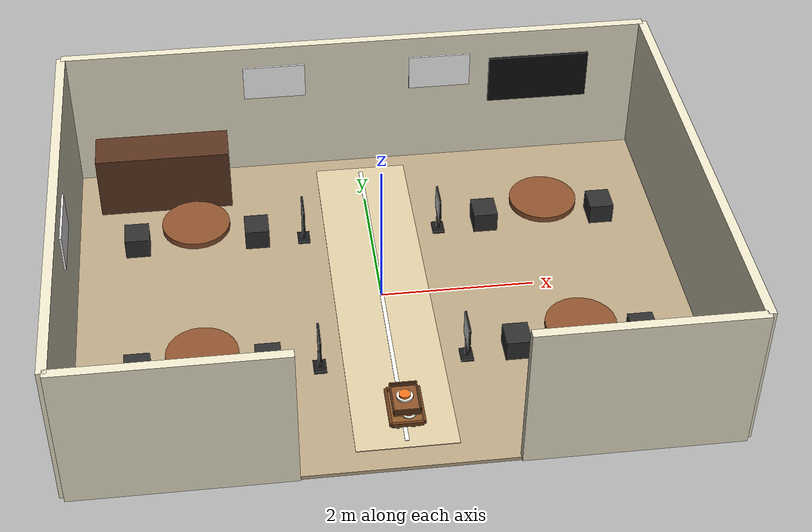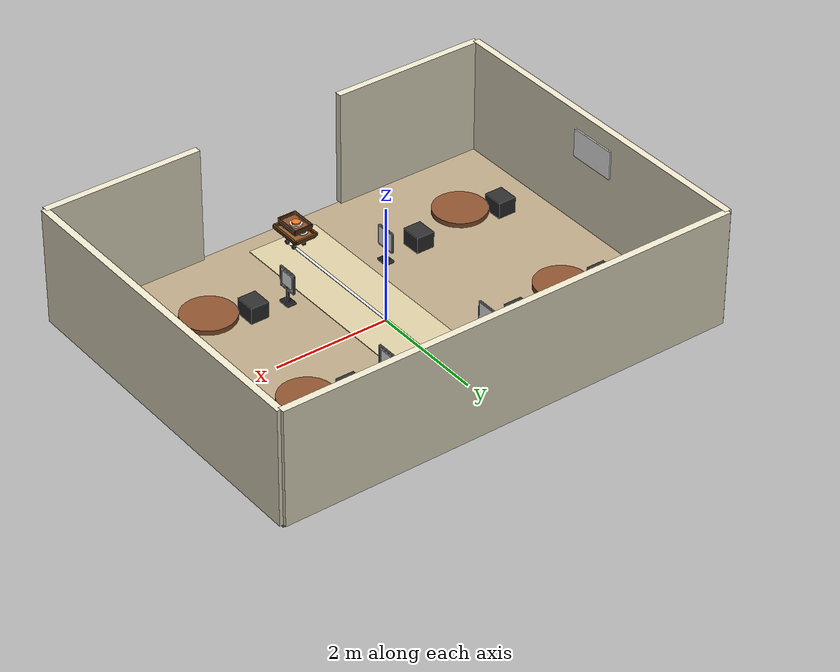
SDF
<?xml version="1.0" ?>
<sdf version="1.10">
  <world name="restaurant_qr_activity_v3">
    <physics name="1ms" type="ignored">
      <max_step_size>0.001</max_step_size>
      <real_time_factor>1.0</real_time_factor>
    </physics>

    <plugin filename="gz-sim-physics-system" name="gz::sim::systems::Physics"/>
    <plugin filename="gz-sim-user-commands-system" name="gz::sim::systems::UserCommands"/>
    <plugin filename="gz-sim-scene-broadcaster-system" name="gz::sim::systems::SceneBroadcaster"/>
    <plugin filename="gz-sim-sensors-system" name="gz::sim::systems::Sensors">
      <render_engine>ogre2</render_engine>
    </plugin>

    <!-- Bright lighting: one sun plus two ceiling point lights. -->
    <light type="directional" name="sun">
      <cast_shadows>true</cast_shadows>
      <pose>0 0 8 0 0 0</pose>
      <diffuse>1.0 1.0 0.95 1</diffuse>
      <specular>0.3 0.3 0.3 1</specular>
      <direction>-0.3 0.2 -1</direction>
    </light>
    <light type="point" name="ceiling_light_front">
      <pose>0 -1.4 2.7 0 0 0</pose>
      <diffuse>1 1 0.92 1</diffuse>
      <specular>0.3 0.3 0.3 1</specular>
      <attenuation>
        <range>8</range>
        <constant>0.4</constant>
        <linear>0.03</linear>
        <quadratic>0.001</quadratic>
      </attenuation>
    </light>
    <light type="point" name="ceiling_light_back">
      <pose>0 1.4 2.7 0 0 0</pose>
      <diffuse>1 1 0.92 1</diffuse>
      <specular>0.3 0.3 0.3 1</specular>
      <attenuation>
        <range>8</range>
        <constant>0.4</constant>
        <linear>0.03</linear>
        <quadratic>0.001</quadratic>
      </attenuation>
    </light>

    <!-- Floor -->
    <model name="restaurant_floor">
      <static>true</static>
      <pose>0 0 -0.025 0 0 0</pose>
      <link name="floor_link">
        <collision name="collision"><geometry><box><size>8 6 0.05</size></box></geometry></collision>
        <visual name="visual">
          <geometry><box><size>8 6 0.05</size></box></geometry>
          <material><ambient>0.73 0.65 0.52 1</ambient><diffuse>0.73 0.65 0.52 1</diffuse></material>
        </visual>
      </link>
    </model>

    <!-- Clear center driving aisle: car should only move forward/backward along the Y direction. -->
    <model name="center_driving_aisle">
      <static>true</static>
      <pose>0 0 0.006 0 0 0</pose>
      <link name="aisle_link">
        <visual name="aisle_visual">
          <geometry><box><size>1.25 5.4 0.01</size></box></geometry>
          <material><ambient>0.86 0.80 0.64 1</ambient><diffuse>0.86 0.80 0.64 1</diffuse></material>
        </visual>
      </link>
    </model>
    <model name="aisle_center_line">
      <static>true</static>
      <pose>0 0 0.015 0 0 0</pose>
      <link name="line_link">
        <visual name="line_visual">
          <geometry><box><size>0.05 5.2 0.01</size></box></geometry>
          <material><ambient>0.98 0.98 0.98 1</ambient><diffuse>0.98 0.98 0.98 1</diffuse></material>
        </visual>
      </link>
    </model>

    <!-- Room walls with a front entrance opening centered on the aisle. -->
    <model name="back_wall"><static>true</static><pose>0 3 1 0 0 0</pose><link name="link"><collision name="c"><geometry><box><size>8 0.12 2</size></box></geometry></collision><visual name="v"><geometry><box><size>8 0.12 2</size></box></geometry><material><ambient>0.93 0.90 0.80 1</ambient><diffuse>0.93 0.90 0.80 1</diffuse></material></visual></link></model>
    <model name="left_wall"><static>true</static><pose>-4 0 1 0 0 0</pose><link name="link"><collision name="c"><geometry><box><size>0.12 6 2</size></box></geometry></collision><visual name="v"><geometry><box><size>0.12 6 2</size></box></geometry><material><ambient>0.93 0.90 0.80 1</ambient><diffuse>0.93 0.90 0.80 1</diffuse></material></visual></link></model>
    <model name="right_wall"><static>true</static><pose>4 0 1 0 0 0</pose><link name="link"><collision name="c"><geometry><box><size>0.12 6 2</size></box></geometry></collision><visual name="v"><geometry><box><size>0.12 6 2</size></box></geometry><material><ambient>0.93 0.90 0.80 1</ambient><diffuse>0.93 0.90 0.80 1</diffuse></material></visual></link></model>
    <model name="front_wall_left"><static>true</static><pose>-2.65 -3 1 0 0 0</pose><link name="link"><collision name="c"><geometry><box><size>2.7 0.12 2</size></box></geometry></collision><visual name="v"><geometry><box><size>2.7 0.12 2</size></box></geometry><material><ambient>0.93 0.90 0.80 1</ambient><diffuse>0.93 0.90 0.80 1</diffuse></material></visual></link></model>
    <model name="front_wall_right"><static>true</static><pose>2.65 -3 1 0 0 0</pose><link name="link"><collision name="c"><geometry><box><size>2.7 0.12 2</size></box></geometry></collision><visual name="v"><geometry><box><size>2.7 0.12 2</size></box></geometry><material><ambient>0.93 0.90 0.80 1</ambient><diffuse>0.93 0.90 0.80 1</diffuse></material></visual></link></model>

    <!-- Counter / host stand away from the center driving aisle. -->
    <model name="service_counter"><static>true</static><pose>-2.75 2.35 0.45 0 0 0</pose><link name="link"><collision name="c"><geometry><box><size>1.8 0.55 0.9</size></box></geometry></collision><visual name="v"><geometry><box><size>1.8 0.55 0.9</size></box></geometry><material><ambient>0.35 0.20 0.12 1</ambient><diffuse>0.35 0.20 0.12 1</diffuse></material></visual></link></model>
    <model name="menu_board"><static>true</static><pose>2.55 2.92 1.25 0 0 0</pose><link name="link"><collision name="c"><geometry><box><size>1.4 0.04 0.7</size></box></geometry></collision><visual name="v"><geometry><box><size>1.4 0.04 0.7</size></box></geometry><material><ambient>0.05 0.05 0.05 1</ambient><diffuse>0.05 0.05 0.05 1</diffuse></material></visual></link></model>

    <!-- Four symmetric tables. They stay outside the center aisle. -->
    <model name="table_left_front"><static>true</static><pose>-2.35 -1.25 0.38 0 0 0</pose><link name="link"><collision name="c"><geometry><cylinder><radius>0.45</radius><length>0.08</length></cylinder></geometry></collision><visual name="v"><geometry><cylinder><radius>0.45</radius><length>0.08</length></cylinder></geometry><material><ambient>0.55 0.32 0.18 1</ambient><diffuse>0.55 0.32 0.18 1</diffuse></material></visual></link></model>
    <model name="table_right_front"><static>true</static><pose>2.35 -1.25 0.38 0 0 0</pose><link name="link"><collision name="c"><geometry><cylinder><radius>0.45</radius><length>0.08</length></cylinder></geometry></collision><visual name="v"><geometry><cylinder><radius>0.45</radius><length>0.08</length></cylinder></geometry><material><ambient>0.55 0.32 0.18 1</ambient><diffuse>0.55 0.32 0.18 1</diffuse></material></visual></link></model>
    <model name="table_left_back"><static>true</static><pose>-2.35 1.25 0.38 0 0 0</pose><link name="link"><collision name="c"><geometry><cylinder><radius>0.45</radius><length>0.08</length></cylinder></geometry></collision><visual name="v"><geometry><cylinder><radius>0.45</radius><length>0.08</length></cylinder></geometry><material><ambient>0.55 0.32 0.18 1</ambient><diffuse>0.55 0.32 0.18 1</diffuse></material></visual></link></model>
    <model name="table_right_back"><static>true</static><pose>2.35 1.25 0.38 0 0 0</pose><link name="link"><collision name="c"><geometry><cylinder><radius>0.45</radius><length>0.08</length></cylinder></geometry></collision><visual name="v"><geometry><cylinder><radius>0.45</radius><length>0.08</length></cylinder></geometry><material><ambient>0.55 0.32 0.18 1</ambient><diffuse>0.55 0.32 0.18 1</diffuse></material></visual></link></model>

    <!-- Small chairs around the tables. No giant invisible collision box. -->
    <model name="chair_set"><static>true</static>
      <link name="chairs">
        <visual name="lf_chair_inner"><pose>-1.55 -1.25 0.18 0 0 0</pose><geometry><box><size>0.32 0.36 0.28</size></box></geometry><material><ambient>0.18 0.18 0.18 1</ambient><diffuse>0.18 0.18 0.18 1</diffuse></material></visual>
        <visual name="lf_chair_outer"><pose>-3.15 -1.25 0.18 0 0 0</pose><geometry><box><size>0.32 0.36 0.28</size></box></geometry><material><ambient>0.18 0.18 0.18 1</ambient><diffuse>0.18 0.18 0.18 1</diffuse></material></visual>
        <visual name="rf_chair_inner"><pose>1.55 -1.25 0.18 0 0 0</pose><geometry><box><size>0.32 0.36 0.28</size></box></geometry><material><ambient>0.18 0.18 0.18 1</ambient><diffuse>0.18 0.18 0.18 1</diffuse></material></visual>
        <visual name="rf_chair_outer"><pose>3.15 -1.25 0.18 0 0 0</pose><geometry><box><size>0.32 0.36 0.28</size></box></geometry><material><ambient>0.18 0.18 0.18 1</ambient><diffuse>0.18 0.18 0.18 1</diffuse></material></visual>
        <visual name="lb_chair_inner"><pose>-1.55 1.25 0.18 0 0 0</pose><geometry><box><size>0.32 0.36 0.28</size></box></geometry><material><ambient>0.18 0.18 0.18 1</ambient><diffuse>0.18 0.18 0.18 1</diffuse></material></visual>
        <visual name="lb_chair_outer"><pose>-3.15 1.25 0.18 0 0 0</pose><geometry><box><size>0.32 0.36 0.28</size></box></geometry><material><ambient>0.18 0.18 0.18 1</ambient><diffuse>0.18 0.18 0.18 1</diffuse></material></visual>
        <visual name="rb_chair_inner"><pose>1.55 1.25 0.18 0 0 0</pose><geometry><box><size>0.32 0.36 0.28</size></box></geometry><material><ambient>0.18 0.18 0.18 1</ambient><diffuse>0.18 0.18 0.18 1</diffuse></material></visual>
        <visual name="rb_chair_outer"><pose>3.15 1.25 0.18 0 0 0</pose><geometry><box><size>0.32 0.36 0.28</size></box></geometry><material><ambient>0.18 0.18 0.18 1</ambient><diffuse>0.18 0.18 0.18 1</diffuse></material></visual>
      </link>
    </model>

    <!-- QR whiteboards near the robot path, beside the four tables. -->
    <include>
      <name>qr_left_front_table</name>
      <uri>model://restaurant_qr_marker_01</uri>
      <pose>-0.92 -1.25 0.00 0 0 -1.5708</pose>
    </include>
    <include>
      <name>qr_right_front_table</name>
      <uri>model://restaurant_qr_marker_02</uri>
      <pose>0.92 -1.25 0.00 0 0 1.5708</pose>
    </include>
    <include>
      <name>qr_left_back_table</name>
      <uri>model://restaurant_qr_marker_03</uri>
      <pose>-0.92 1.25 0.00 0 0 -1.5708</pose>
    </include>
    <include>
      <name>qr_right_back_table</name>
      <uri>model://restaurant_qr_marker_04</uri>
      <pose>0.92 1.25 0.00 0 0 1.5708</pose>
    </include>

    <!-- Restaurant decorations on the walls. Kept higher than the QR boards so they do not confuse the robot camera. -->
    <include>
      <name>wall_art_pizza_back</name>
      <uri>model://restaurant_wall_art_pizza</uri>
      <pose>-1.15 2.925 1.45 0 0 0</pose>
    </include>
    <include>
      <name>wall_art_cafe_back</name>
      <uri>model://restaurant_wall_art_cafe</uri>
      <pose>1.15 2.925 1.45 0 0 0</pose>
    </include>
    <include>
      <name>wall_art_bistro_left</name>
      <uri>model://restaurant_wall_art_bistro</uri>
      <pose>-3.925 0.00 1.45 0 0 -1.5708</pose>
    </include>

    <!-- Food delivery tray placed on top of the robot at the start.
         This visually shows that the robot is a restaurant delivery robot. -->
    <include>
      <name>delivery_tray_on_robot_start</name>
      <uri>model://restaurant_delivery_tray</uri>
      <pose>0 -2.35 0.28 0 0 1.5708</pose>
    </include>

    <!-- Optional robot. The car starts in the center aisle; only forward/backward motion is needed. -->
    <include>
      <name>robot_car</name>
      <uri>model://ackermann_car</uri>
      <pose>0 -2.35 0.08 0 0 1.5708</pose>
    </include>
  </world>
</sdf>

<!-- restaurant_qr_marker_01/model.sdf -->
<sdf version="1.10">
  <model name="restaurant_qr_marker_01">
    <static>true</static>
    <link name="qr_whiteboard_link">
      <!-- Model origin is on the floor. QR board center height is 0.42 m. -->
      <visual name="white_backing">
        <pose>0 0.006 0.42 0 0 0</pose>
        <geometry><box><size>0.32 0.018 0.32</size></box></geometry>
        <material><ambient>1 1 1 1</ambient><diffuse>1 1 1 1</diffuse></material>
      </visual>
      <visual name="qr_panel_visual">
        <pose>0 -0.006 0.42 0 0 0</pose>
        <geometry><box><size>0.24 0.012 0.24</size></box></geometry>
        <material>
          <ambient>1 1 1 1</ambient>
          <diffuse>1 1 1 1</diffuse>
          <pbr><metal><albedo_map>materials/textures/qr_01.png</albedo_map><roughness>0.85</roughness><metalness>0.0</metalness></metal></pbr>
        </material>
      </visual>
      <visual name="black_frame_top"><pose>0 0 0.59 0 0 0</pose><geometry><box><size>0.34 0.025 0.025</size></box></geometry><material><ambient>0.05 0.05 0.05 1</ambient><diffuse>0.05 0.05 0.05 1</diffuse></material></visual>
      <visual name="black_frame_bottom"><pose>0 0 0.25 0 0 0</pose><geometry><box><size>0.34 0.025 0.025</size></box></geometry><material><ambient>0.05 0.05 0.05 1</ambient><diffuse>0.05 0.05 0.05 1</diffuse></material></visual>
      <visual name="black_frame_left"><pose>-0.17 0 0.42 0 0 0</pose><geometry><box><size>0.025 0.025 0.34</size></box></geometry><material><ambient>0.05 0.05 0.05 1</ambient><diffuse>0.05 0.05 0.05 1</diffuse></material></visual>
      <visual name="black_frame_right"><pose>0.17 0 0.42 0 0 0</pose><geometry><box><size>0.025 0.025 0.34</size></box></geometry><material><ambient>0.05 0.05 0.05 1</ambient><diffuse>0.05 0.05 0.05 1</diffuse></material></visual>
      <visual name="stand_pole"><pose>0 0 0.14 0 0 0</pose><geometry><box><size>0.045 0.045 0.28</size></box></geometry><material><ambient>0.12 0.12 0.12 1</ambient><diffuse>0.12 0.12 0.12 1</diffuse></material></visual>
      <visual name="stand_base"><pose>0 0 0.015 0 0 0</pose><geometry><box><size>0.22 0.16 0.03</size></box></geometry><material><ambient>0.1 0.1 0.1 1</ambient><diffuse>0.1 0.1 0.1 1</diffuse></material></visual>
      <collision name="qr_board_collision"><pose>0 0 0.42 0 0 0</pose><geometry><box><size>0.34 0.03 0.34</size></box></geometry></collision>
      <collision name="stand_collision"><pose>0 0 0.14 0 0 0</pose><geometry><box><size>0.05 0.05 0.28</size></box></geometry></collision>
      <collision name="base_collision"><pose>0 0 0.015 0 0 0</pose><geometry><box><size>0.22 0.16 0.03</size></box></geometry></collision>
    </link>
  </model>
</sdf>

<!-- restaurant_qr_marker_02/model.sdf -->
<sdf version="1.10">
  <model name="restaurant_qr_marker_02">
    <static>true</static>
    <link name="qr_whiteboard_link">
      <!-- Model origin is on the floor. QR board center height is 0.42 m. -->
      <visual name="white_backing">
        <pose>0 0.006 0.42 0 0 0</pose>
        <geometry><box><size>0.32 0.018 0.32</size></box></geometry>
        <material><ambient>1 1 1 1</ambient><diffuse>1 1 1 1</diffuse></material>
      </visual>
      <visual name="qr_panel_visual">
        <pose>0 -0.006 0.42 0 0 0</pose>
        <geometry><box><size>0.24 0.012 0.24</size></box></geometry>
        <material>
          <ambient>1 1 1 1</ambient>
          <diffuse>1 1 1 1</diffuse>
          <pbr><metal><albedo_map>materials/textures/qr_02.png</albedo_map><roughness>0.85</roughness><metalness>0.0</metalness></metal></pbr>
        </material>
      </visual>
      <visual name="black_frame_top"><pose>0 0 0.59 0 0 0</pose><geometry><box><size>0.34 0.025 0.025</size></box></geometry><material><ambient>0.05 0.05 0.05 1</ambient><diffuse>0.05 0.05 0.05 1</diffuse></material></visual>
      <visual name="black_frame_bottom"><pose>0 0 0.25 0 0 0</pose><geometry><box><size>0.34 0.025 0.025</size></box></geometry><material><ambient>0.05 0.05 0.05 1</ambient><diffuse>0.05 0.05 0.05 1</diffuse></material></visual>
      <visual name="black_frame_left"><pose>-0.17 0 0.42 0 0 0</pose><geometry><box><size>0.025 0.025 0.34</size></box></geometry><material><ambient>0.05 0.05 0.05 1</ambient><diffuse>0.05 0.05 0.05 1</diffuse></material></visual>
      <visual name="black_frame_right"><pose>0.17 0 0.42 0 0 0</pose><geometry><box><size>0.025 0.025 0.34</size></box></geometry><material><ambient>0.05 0.05 0.05 1</ambient><diffuse>0.05 0.05 0.05 1</diffuse></material></visual>
      <visual name="stand_pole"><pose>0 0 0.14 0 0 0</pose><geometry><box><size>0.045 0.045 0.28</size></box></geometry><material><ambient>0.12 0.12 0.12 1</ambient><diffuse>0.12 0.12 0.12 1</diffuse></material></visual>
      <visual name="stand_base"><pose>0 0 0.015 0 0 0</pose><geometry><box><size>0.22 0.16 0.03</size></box></geometry><material><ambient>0.1 0.1 0.1 1</ambient><diffuse>0.1 0.1 0.1 1</diffuse></material></visual>
      <collision name="qr_board_collision"><pose>0 0 0.42 0 0 0</pose><geometry><box><size>0.34 0.03 0.34</size></box></geometry></collision>
      <collision name="stand_collision"><pose>0 0 0.14 0 0 0</pose><geometry><box><size>0.05 0.05 0.28</size></box></geometry></collision>
      <collision name="base_collision"><pose>0 0 0.015 0 0 0</pose><geometry><box><size>0.22 0.16 0.03</size></box></geometry></collision>
    </link>
  </model>
</sdf>

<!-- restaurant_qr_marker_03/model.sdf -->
<sdf version="1.10">
  <model name="restaurant_qr_marker_03">
    <static>true</static>
    <link name="qr_whiteboard_link">
      <!-- Model origin is on the floor. QR board center height is 0.42 m. -->
      <visual name="white_backing">
        <pose>0 0.006 0.42 0 0 0</pose>
        <geometry><box><size>0.32 0.018 0.32</size></box></geometry>
        <material><ambient>1 1 1 1</ambient><diffuse>1 1 1 1</diffuse></material>
      </visual>
      <visual name="qr_panel_visual">
        <pose>0 -0.006 0.42 0 0 0</pose>
        <geometry><box><size>0.24 0.012 0.24</size></box></geometry>
        <material>
          <ambient>1 1 1 1</ambient>
          <diffuse>1 1 1 1</diffuse>
          <pbr><metal><albedo_map>materials/textures/qr_03.png</albedo_map><roughness>0.85</roughness><metalness>0.0</metalness></metal></pbr>
        </material>
      </visual>
      <visual name="black_frame_top"><pose>0 0 0.59 0 0 0</pose><geometry><box><size>0.34 0.025 0.025</size></box></geometry><material><ambient>0.05 0.05 0.05 1</ambient><diffuse>0.05 0.05 0.05 1</diffuse></material></visual>
      <visual name="black_frame_bottom"><pose>0 0 0.25 0 0 0</pose><geometry><box><size>0.34 0.025 0.025</size></box></geometry><material><ambient>0.05 0.05 0.05 1</ambient><diffuse>0.05 0.05 0.05 1</diffuse></material></visual>
      <visual name="black_frame_left"><pose>-0.17 0 0.42 0 0 0</pose><geometry><box><size>0.025 0.025 0.34</size></box></geometry><material><ambient>0.05 0.05 0.05 1</ambient><diffuse>0.05 0.05 0.05 1</diffuse></material></visual>
      <visual name="black_frame_right"><pose>0.17 0 0.42 0 0 0</pose><geometry><box><size>0.025 0.025 0.34</size></box></geometry><material><ambient>0.05 0.05 0.05 1</ambient><diffuse>0.05 0.05 0.05 1</diffuse></material></visual>
      <visual name="stand_pole"><pose>0 0 0.14 0 0 0</pose><geometry><box><size>0.045 0.045 0.28</size></box></geometry><material><ambient>0.12 0.12 0.12 1</ambient><diffuse>0.12 0.12 0.12 1</diffuse></material></visual>
      <visual name="stand_base"><pose>0 0 0.015 0 0 0</pose><geometry><box><size>0.22 0.16 0.03</size></box></geometry><material><ambient>0.1 0.1 0.1 1</ambient><diffuse>0.1 0.1 0.1 1</diffuse></material></visual>
      <collision name="qr_board_collision"><pose>0 0 0.42 0 0 0</pose><geometry><box><size>0.34 0.03 0.34</size></box></geometry></collision>
      <collision name="stand_collision"><pose>0 0 0.14 0 0 0</pose><geometry><box><size>0.05 0.05 0.28</size></box></geometry></collision>
      <collision name="base_collision"><pose>0 0 0.015 0 0 0</pose><geometry><box><size>0.22 0.16 0.03</size></box></geometry></collision>
    </link>
  </model>
</sdf>

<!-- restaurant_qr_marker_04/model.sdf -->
<sdf version="1.10">
  <model name="restaurant_qr_marker_04">
    <static>true</static>
    <link name="qr_whiteboard_link">
      <!-- Model origin is on the floor. QR board center height is 0.42 m. -->
      <visual name="white_backing">
        <pose>0 0.006 0.42 0 0 0</pose>
        <geometry><box><size>0.32 0.018 0.32</size></box></geometry>
        <material><ambient>1 1 1 1</ambient><diffuse>1 1 1 1</diffuse></material>
      </visual>
      <visual name="qr_panel_visual">
        <pose>0 -0.006 0.42 0 0 0</pose>
        <geometry><box><size>0.24 0.012 0.24</size></box></geometry>
        <material>
          <ambient>1 1 1 1</ambient>
          <diffuse>1 1 1 1</diffuse>
          <pbr><metal><albedo_map>materials/textures/qr_04.png</albedo_map><roughness>0.85</roughness><metalness>0.0</metalness></metal></pbr>
        </material>
      </visual>
      <visual name="black_frame_top"><pose>0 0 0.59 0 0 0</pose><geometry><box><size>0.34 0.025 0.025</size></box></geometry><material><ambient>0.05 0.05 0.05 1</ambient><diffuse>0.05 0.05 0.05 1</diffuse></material></visual>
      <visual name="black_frame_bottom"><pose>0 0 0.25 0 0 0</pose><geometry><box><size>0.34 0.025 0.025</size></box></geometry><material><ambient>0.05 0.05 0.05 1</ambient><diffuse>0.05 0.05 0.05 1</diffuse></material></visual>
      <visual name="black_frame_left"><pose>-0.17 0 0.42 0 0 0</pose><geometry><box><size>0.025 0.025 0.34</size></box></geometry><material><ambient>0.05 0.05 0.05 1</ambient><diffuse>0.05 0.05 0.05 1</diffuse></material></visual>
      <visual name="black_frame_right"><pose>0.17 0 0.42 0 0 0</pose><geometry><box><size>0.025 0.025 0.34</size></box></geometry><material><ambient>0.05 0.05 0.05 1</ambient><diffuse>0.05 0.05 0.05 1</diffuse></material></visual>
      <visual name="stand_pole"><pose>0 0 0.14 0 0 0</pose><geometry><box><size>0.045 0.045 0.28</size></box></geometry><material><ambient>0.12 0.12 0.12 1</ambient><diffuse>0.12 0.12 0.12 1</diffuse></material></visual>
      <visual name="stand_base"><pose>0 0 0.015 0 0 0</pose><geometry><box><size>0.22 0.16 0.03</size></box></geometry><material><ambient>0.1 0.1 0.1 1</ambient><diffuse>0.1 0.1 0.1 1</diffuse></material></visual>
      <collision name="qr_board_collision"><pose>0 0 0.42 0 0 0</pose><geometry><box><size>0.34 0.03 0.34</size></box></geometry></collision>
      <collision name="stand_collision"><pose>0 0 0.14 0 0 0</pose><geometry><box><size>0.05 0.05 0.28</size></box></geometry></collision>
      <collision name="base_collision"><pose>0 0 0.015 0 0 0</pose><geometry><box><size>0.22 0.16 0.03</size></box></geometry></collision>
    </link>
  </model>
</sdf>

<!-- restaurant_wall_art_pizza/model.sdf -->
<sdf version="1.10">
  <model name="restaurant_wall_art_pizza">
    <static>true</static>
    <link name="art_link">
      <visual name="art_visual">
        <geometry><box><size>0.85 0.025 0.50</size></box></geometry>
        <material>
          <ambient>1 1 1 1</ambient><diffuse>1 1 1 1</diffuse>
          <pbr><metal><albedo_map>materials/textures/restaurant_wall_art_pizza.png</albedo_map><roughness>0.9</roughness><metalness>0.0</metalness></metal></pbr>
        </material>
      </visual>
      <collision name="art_collision"><geometry><box><size>0.85 0.025 0.50</size></box></geometry></collision>
    </link>
  </model>
</sdf>

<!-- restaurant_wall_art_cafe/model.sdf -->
<sdf version="1.10">
  <model name="restaurant_wall_art_cafe">
    <static>true</static>
    <link name="art_link">
      <visual name="art_visual">
        <geometry><box><size>0.85 0.025 0.50</size></box></geometry>
        <material>
          <ambient>1 1 1 1</ambient><diffuse>1 1 1 1</diffuse>
          <pbr><metal><albedo_map>materials/textures/restaurant_wall_art_cafe.png</albedo_map><roughness>0.9</roughness><metalness>0.0</metalness></metal></pbr>
        </material>
      </visual>
      <collision name="art_collision"><geometry><box><size>0.85 0.025 0.50</size></box></geometry></collision>
    </link>
  </model>
</sdf>

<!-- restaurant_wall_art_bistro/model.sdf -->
<sdf version="1.10">
  <model name="restaurant_wall_art_bistro">
    <static>true</static>
    <link name="art_link">
      <visual name="art_visual">
        <geometry><box><size>0.85 0.025 0.50</size></box></geometry>
        <material>
          <ambient>1 1 1 1</ambient><diffuse>1 1 1 1</diffuse>
          <pbr><metal><albedo_map>materials/textures/restaurant_wall_art_bistro.png</albedo_map><roughness>0.9</roughness><metalness>0.0</metalness></metal></pbr>
        </material>
      </visual>
      <collision name="art_collision"><geometry><box><size>0.85 0.025 0.50</size></box></geometry></collision>
    </link>
  </model>
</sdf>

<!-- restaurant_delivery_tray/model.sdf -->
<sdf version="1.10">
  <model name="restaurant_delivery_tray">
    <static>false</static>
    <link name="tray_link">
      <inertial><mass>0.35</mass><inertia><ixx>0.01</ixx><iyy>0.01</iyy><izz>0.01</izz></inertia></inertial>
      <!-- Tray platform -->
      <visual name="tray_board"><pose>0 0 0.02 0 0 0</pose><geometry><box><size>0.55 0.38 0.04</size></box></geometry><material><ambient>0.55 0.35 0.16 1</ambient><diffuse>0.55 0.35 0.16 1</diffuse></material></visual>
      <collision name="tray_collision"><pose>0 0 0.02 0 0 0</pose><geometry><box><size>0.55 0.38 0.04</size></box></geometry></collision>
      <!-- Raised rim -->
      <visual name="rim_front"><pose>0 -0.20 0.065 0 0 0</pose><geometry><box><size>0.58 0.035 0.05</size></box></geometry><material><ambient>0.42 0.24 0.10 1</ambient><diffuse>0.42 0.24 0.10 1</diffuse></material></visual>
      <visual name="rim_back"><pose>0 0.20 0.065 0 0 0</pose><geometry><box><size>0.58 0.035 0.05</size></box></geometry><material><ambient>0.42 0.24 0.10 1</ambient><diffuse>0.42 0.24 0.10 1</diffuse></material></visual>
      <visual name="rim_left"><pose>-0.29 0 0.065 0 0 0</pose><geometry><box><size>0.035 0.38 0.05</size></box></geometry><material><ambient>0.42 0.24 0.10 1</ambient><diffuse>0.42 0.24 0.10 1</diffuse></material></visual>
      <visual name="rim_right"><pose>0.29 0 0.065 0 0 0</pose><geometry><box><size>0.035 0.38 0.05</size></box></geometry><material><ambient>0.42 0.24 0.10 1</ambient><diffuse>0.42 0.24 0.10 1</diffuse></material></visual>
      <!-- Food plates to show delivery function -->
      <visual name="plate_1"><pose>-0.14 -0.03 0.09 0 0 0</pose><geometry><cylinder><radius>0.09</radius><length>0.015</length></cylinder></geometry><material><ambient>0.95 0.95 0.90 1</ambient><diffuse>0.95 0.95 0.90 1</diffuse></material></visual>
      <visual name="food_1"><pose>-0.14 -0.03 0.108 0 0 0</pose><geometry><cylinder><radius>0.06</radius><length>0.018</length></cylinder></geometry><material><ambient>0.90 0.28 0.08 1</ambient><diffuse>0.90 0.28 0.08 1</diffuse></material></visual>
      <visual name="plate_2"><pose>0.14 0.04 0.09 0 0 0</pose><geometry><cylinder><radius>0.085</radius><length>0.015</length></cylinder></geometry><material><ambient>0.95 0.95 0.90 1</ambient><diffuse>0.95 0.95 0.90 1</diffuse></material></visual>
      <visual name="food_2"><pose>0.14 0.04 0.108 0 0 0</pose><geometry><sphere><radius>0.055</radius></sphere></geometry><material><ambient>0.25 0.65 0.20 1</ambient><diffuse>0.25 0.65 0.20 1</diffuse></material></visual>
      <surface><friction><ode><mu>1.5</mu><mu2>1.5</mu2></ode></friction></surface>
    </link>
  </model>
</sdf>

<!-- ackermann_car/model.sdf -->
<sdf version="1.10">
  <model name="ackermann_car">
    <static>false</static>
    <self_collide>false</self_collide>

    <link name="chassis">
    <!-- Delivery tray fixed on robot chassis -->
<visual name="delivery_tray_base">
  <pose>0 0 0.28 0 0 0</pose>
  <geometry>
    <box>
      <size>0.45 0.32 0.04</size>
    </box>
  </geometry>
  <material>
    <ambient>0.55 0.32 0.16 1</ambient>
    <diffuse>0.55 0.32 0.16 1</diffuse>
  </material>
</visual>

<visual name="delivery_tray_plate">
  <pose>0.03 0 0.325 0 0 0</pose>
  <geometry>
    <cylinder>
      <radius>0.10</radius>
      <length>0.025</length>
    </cylinder>
  </geometry>
  <material>
    <ambient>0.95 0.95 0.90 1</ambient>
    <diffuse>0.95 0.95 0.90 1</diffuse>
  </material>
</visual>

<visual name="delivery_tray_food">
  <pose>0.03 0 0.35 0 0 0</pose>
  <geometry>
    <cylinder>
      <radius>0.07</radius>
      <length>0.035</length>
    </cylinder>
  </geometry>
  <material>
    <ambient>0.95 0.45 0.12 1</ambient>
    <diffuse>0.95 0.45 0.12 1</diffuse>
  </material>
</visual>

<visual name="delivery_tray_front_lip">
  <pose>0.225 0 0.325 0 0 0</pose>
  <geometry>
    <box>
      <size>0.02 0.32 0.06</size>
    </box>
  </geometry>
  <material>
    <ambient>0.35 0.20 0.10 1</ambient>
    <diffuse>0.35 0.20 0.10 1</diffuse>
  </material>
</visual>

<visual name="delivery_tray_back_lip">
  <pose>-0.225 0 0.325 0 0 0</pose>
  <geometry>
    <box>
      <size>0.02 0.32 0.06</size>
    </box>
  </geometry>
  <material>
    <ambient>0.35 0.20 0.10 1</ambient>
    <diffuse>0.35 0.20 0.10 1</diffuse>
  </material>
</visual>

<visual name="delivery_tray_left_lip">
  <pose>0 0.16 0.325 0 0 0</pose>
  <geometry>
    <box>
      <size>0.45 0.02 0.06</size>
    </box>
  </geometry>
  <material>
    <ambient>0.35 0.20 0.10 1</ambient>
    <diffuse>0.35 0.20 0.10 1</diffuse>
  </material>
</visual>

<visual name="delivery_tray_right_lip">
  <pose>0 -0.16 0.325 0 0 0</pose>
  <geometry>
    <box>
      <size>0.45 0.02 0.06</size>
    </box>
  </geometry>
  <material>
    <ambient>0.35 0.20 0.10 1</ambient>
    <diffuse>0.35 0.20 0.10 1</diffuse>
  </material>
</visual>
      <pose>0 0 0.08 0 0 0</pose>
      <inertial>
        <mass>1.384</mass>
        <inertia>
          <ixx>0.0073</ixx>
          <iyy>0.0091</iyy>
          <izz>0.0131</izz>
          <ixy>0</ixy>
          <ixz>0</ixz>
          <iyz>0</iyz>
        </inertia>
      </inertial>

      <collision name="base_collision">
        <pose>0 0 -0.01 0 0 0</pose>
        <geometry>
          <box>
            <size>0.16 0.07 0.03</size>
          </box>
        </geometry>
      </collision>

      <collision name="platform_collision">
        <pose>0 0 0.032 0 0 0</pose>
        <geometry>
          <box>
            <size>0.2 0.095 0.004</size>
          </box>
        </geometry>
      </collision>

      <collision name="tower_collision">
        <pose>0.07 0 0.079 0 0 0</pose>
        <geometry>
          <box>
            <size>0.02 0.02 0.09</size>
          </box>
        </geometry>
      </collision>

      <visual name="base_visual">
        <pose>0 0 -0.01 0 0 0</pose>
        <geometry>
          <box>
            <size>0.16 0.07 0.03</size>
          </box>
        </geometry>
        <material>
          <ambient>0.12 0.12 0.12 1</ambient>
          <diffuse>0.18 0.18 0.18 1</diffuse>
        </material>
      </visual>

      <visual name="platform_visual">
        <pose>0 0 0.032 0 0 0</pose>
        <geometry>
          <box>
            <size>0.2 0.095 0.004</size>
          </box>
        </geometry>
        <material>
          <ambient>0.75 0.75 0.78 1</ambient>
          <diffuse>0.82 0.82 0.86 1</diffuse>
        </material>
      </visual>

      <visual name="tower_visual">
        <pose>0.07 0 0.079 0 0 0</pose>
        <geometry>
          <box>
            <size>0.02 0.02 0.09</size>
          </box>
        </geometry>
        <material>
          <ambient>0.2 0.2 0.2 1</ambient>
          <diffuse>0.28 0.28 0.28 1</diffuse>
        </material>
      </visual>
    </link>

    <link name="front_left_steering">
      <pose>0.0875 0.092075 0.0381 0 0 0</pose>
      <inertial>
        <mass>0.02</mass>
        <inertia>
          <ixx>0.000002</ixx>
          <iyy>0.000002</iyy>
          <izz>0.000002</izz>
          <ixy>0</ixy>
          <ixz>0</ixz>
          <iyz>0</iyz>
        </inertia>
      </inertial>
    </link>

    <link name="front_right_steering">
      <pose>0.0875 -0.092075 0.0381 0 0 0</pose>
      <inertial>
        <mass>0.02</mass>
        <inertia>
          <ixx>0.000002</ixx>
          <iyy>0.000002</iyy>
          <izz>0.000002</izz>
          <ixy>0</ixy>
          <ixz>0</ixz>
          <iyz>0</iyz>
        </inertia>
      </inertial>
    </link>

    <link name="front_left_wheel">
      <pose>0.0875 0.092075 0.0381 0 0 0</pose>
      <inertial>
        <mass>0.09</mass>
        <inertia>
          <ixx>0.000044</ixx>
          <iyy>0.000065</iyy>
          <izz>0.000044</izz>
          <ixy>0</ixy>
          <ixz>0</ixz>
          <iyz>0</iyz>
        </inertia>
      </inertial>
      <collision name="collision">
        <geometry>
          <sphere>
            <radius>0.0381</radius>
          </sphere>
        </geometry>
        <surface>
          <friction>
            <ode>
              <mu>1.0</mu>
              <mu2>1.0</mu2>
            </ode>
          </friction>
        </surface>
      </collision>
      <visual name="visual">
        <pose>0 0 0 1.57079632679 0 0</pose>
        <geometry>
          <cylinder>
            <radius>0.0381</radius>
            <length>0.0381</length>
          </cylinder>
        </geometry>
        <material>
          <ambient>0.04 0.04 0.04 1</ambient>
          <diffuse>0.08 0.08 0.08 1</diffuse>
        </material>
      </visual>
    </link>

    <link name="front_right_wheel">
      <pose>0.0875 -0.092075 0.0381 0 0 0</pose>
      <inertial>
        <mass>0.09</mass>
        <inertia>
          <ixx>0.000044</ixx>
          <iyy>0.000065</iyy>
          <izz>0.000044</izz>
          <ixy>0</ixy>
          <ixz>0</ixz>
          <iyz>0</iyz>
        </inertia>
      </inertial>
      <collision name="collision">
        <geometry>
          <sphere>
            <radius>0.0381</radius>
          </sphere>
        </geometry>
        <surface>
          <friction>
            <ode>
              <mu>1.0</mu>
              <mu2>1.0</mu2>
            </ode>
          </friction>
        </surface>
      </collision>
      <visual name="visual">
        <pose>0 0 0 1.57079632679 0 0</pose>
        <geometry>
          <cylinder>
            <radius>0.0381</radius>
            <length>0.0381</length>
          </cylinder>
        </geometry>
        <material>
          <ambient>0.04 0.04 0.04 1</ambient>
          <diffuse>0.08 0.08 0.08 1</diffuse>
        </material>
      </visual>
    </link>

    <link name="rear_left_wheel">
      <pose>-0.0875 0.092075 0.0381 0 0 0</pose>
      <inertial>
        <mass>0.09</mass>
        <inertia>
          <ixx>0.000044</ixx>
          <iyy>0.000065</iyy>
          <izz>0.000044</izz>
          <ixy>0</ixy>
          <ixz>0</ixz>
          <iyz>0</iyz>
        </inertia>
      </inertial>
      <collision name="collision">
        <geometry>
          <sphere>
            <radius>0.0381</radius>
          </sphere>
        </geometry>
        <surface>
          <friction>
            <ode>
              <mu>1.0</mu>
              <mu2>1.0</mu2>
            </ode>
          </friction>
        </surface>
      </collision>
      <visual name="visual">
        <pose>0 0 0 1.57079632679 0 0</pose>
        <geometry>
          <cylinder>
            <radius>0.0381</radius>
            <length>0.0381</length>
          </cylinder>
        </geometry>
        <material>
          <ambient>0.04 0.04 0.04 1</ambient>
          <diffuse>0.08 0.08 0.08 1</diffuse>
        </material>
      </visual>
    </link>

    <link name="rear_right_wheel">
      <pose>-0.0875 -0.092075 0.0381 0 0 0</pose>
      <inertial>
        <mass>0.09</mass>
        <inertia>
          <ixx>0.000044</ixx>
          <iyy>0.000065</iyy>
          <izz>0.000044</izz>
          <ixy>0</ixy>
          <ixz>0</ixz>
          <iyz>0</iyz>
        </inertia>
      </inertial>
      <collision name="collision">
        <geometry>
          <sphere>
            <radius>0.0381</radius>
          </sphere>
        </geometry>
        <surface>
          <friction>
            <ode>
              <mu>1.0</mu>
              <mu2>1.0</mu2>
            </ode>
          </friction>
        </surface>
      </collision>
      <visual name="visual">
        <pose>0 0 0 1.57079632679 0 0</pose>
        <geometry>
          <cylinder>
            <radius>0.0381</radius>
            <length>0.0381</length>
          </cylinder>
        </geometry>
        <material>
          <ambient>0.04 0.04 0.04 1</ambient>
          <diffuse>0.08 0.08 0.08 1</diffuse>
        </material>
      </visual>
    </link>

    <link name="camera_link">
      <pose>0.09 0 0.204 0 0.174533 0</pose>
      <inertial>
        <mass>0.05</mass>
        <inertia>
          <ixx>0.000005</ixx>
          <iyy>0.000005</iyy>
          <izz>0.000005</izz>
          <ixy>0</ixy>
          <ixz>0</ixz>
          <iyz>0</iyz>
        </inertia>
      </inertial>
      <visual name="camera_body_visual">
        <geometry>
          <box>
            <size>0.025 0.025 0.02</size>
          </box>
        </geometry>
        <material>
          <ambient>0.1 0.22 0.1 1</ambient>
          <diffuse>0.15 0.35 0.15 1</diffuse>
        </material>
      </visual>
      <sensor name="front_camera" type="camera">
        <always_on>1</always_on>
        <update_rate>30</update_rate>
        <visualize>true</visualize>
        <camera>
          <horizontal_fov>1.047</horizontal_fov>
          <image>
            <width>640</width>
            <height>480</height>
            <format>R8G8B8</format>
          </image>
          <clip>
            <near>0.02</near>
            <far>100</far>
          </clip>
        </camera>
      </sensor>
    </link>

    <joint name="front_left_steer_joint" type="revolute">
      <parent>chassis</parent>
      <child>front_left_steering</child>
      <axis>
        <xyz>0 0 1</xyz>
        <limit>
          <lower>-0.6</lower>
          <upper>0.6</upper>
          <effort>100</effort>
          <velocity>5</velocity>
        </limit>
        <dynamics>
          <damping>0.4</damping>
        </dynamics>
      </axis>
    </joint>

    <joint name="front_right_steer_joint" type="revolute">
      <parent>chassis</parent>
      <child>front_right_steering</child>
      <axis>
        <xyz>0 0 1</xyz>
        <limit>
          <lower>-0.6</lower>
          <upper>0.6</upper>
          <effort>100</effort>
          <velocity>5</velocity>
        </limit>
        <dynamics>
          <damping>0.4</damping>
        </dynamics>
      </axis>
    </joint>

    <joint name="front_left_wheel_joint" type="revolute">
      <parent>front_left_steering</parent>
      <child>front_left_wheel</child>
      <axis>
        <xyz>0 1 0</xyz>
        <limit>
          <lower>-1000000</lower>
          <upper>1000000</upper>
          <effort>100</effort>
          <velocity>100</velocity>
        </limit>
        <dynamics>
          <damping>0.05</damping>
        </dynamics>
      </axis>
    </joint>

    <joint name="front_right_wheel_joint" type="revolute">
      <parent>front_right_steering</parent>
      <child>front_right_wheel</child>
      <axis>
        <xyz>0 1 0</xyz>
        <limit>
          <lower>-1000000</lower>
          <upper>1000000</upper>
          <effort>100</effort>
          <velocity>100</velocity>
        </limit>
        <dynamics>
          <damping>0.05</damping>
        </dynamics>
      </axis>
    </joint>

    <joint name="rear_left_wheel_joint" type="revolute">
      <parent>chassis</parent>
      <child>rear_left_wheel</child>
      <axis>
        <xyz>0 1 0</xyz>
        <limit>
          <lower>-1000000</lower>
          <upper>1000000</upper>
          <effort>100</effort>
          <velocity>100</velocity>
        </limit>
        <dynamics>
          <damping>0.05</damping>
        </dynamics>
      </axis>
    </joint>

    <joint name="rear_right_wheel_joint" type="revolute">
      <parent>chassis</parent>
      <child>rear_right_wheel</child>
      <axis>
        <xyz>0 1 0</xyz>
        <limit>
          <lower>-1000000</lower>
          <upper>1000000</upper>
          <effort>100</effort>
          <velocity>100</velocity>
        </limit>
        <dynamics>
          <damping>0.05</damping>
        </dynamics>
      </axis>
    </joint>

    <joint name="camera_mount_joint" type="fixed">
      <parent>chassis</parent>
      <child>camera_link</child>
    </joint>

    <plugin filename="gz-sim-ackermann-steering-system"
            name="gz::sim::systems::AckermannSteering">
      <topic>/cmd_vel</topic>
      <left_joint>rear_left_wheel_joint</left_joint>
      <right_joint>rear_right_wheel_joint</right_joint>
      <left_steering_joint>front_left_steer_joint</left_steering_joint>
      <right_steering_joint>front_right_steer_joint</right_steering_joint>
      <wheel_base>0.175</wheel_base>
      <wheel_separation>0.18415</wheel_separation>
      <kingpin_width>0.18415</kingpin_width>
      <wheel_radius>0.0381</wheel_radius>
      <steering_limit>0.6</steering_limit>
      <steer_p_gain>12</steer_p_gain>
      <min_velocity>-1.5</min_velocity>
      <max_velocity>1.5</max_velocity>
      <min_acceleration>-3.0</min_acceleration>
      <max_acceleration>3.0</max_acceleration>
      <odom_publish_frequency>30</odom_publish_frequency>
    </plugin>
  </model>
</sdf>
